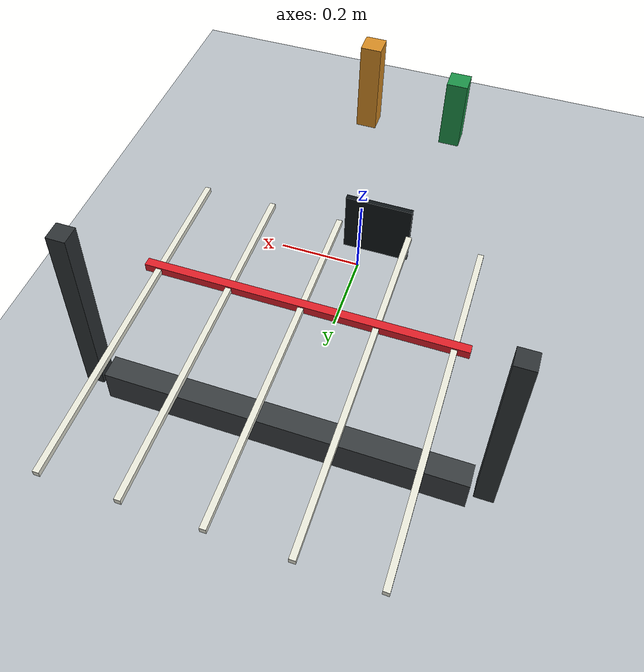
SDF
<?xml version="1.0" ?>
<sdf version="1.10">
  <world name="rm65b_world">
    <plugin filename="gz-sim-physics-system" name="gz::sim::systems::Physics"/>
    <plugin filename="gz-sim-user-commands-system" name="gz::sim::systems::UserCommands"/>
    <plugin filename="gz-sim-scene-broadcaster-system" name="gz::sim::systems::SceneBroadcaster"/>
    <plugin filename="gz-sim-sensors-system" name="gz::sim::systems::Sensors"/>

    <gravity>0 0 -9.8</gravity>
    <magnetic_field>6e-6 2.3e-5 -4.2e-5</magnetic_field>
    <atmosphere type="adiabatic"/>

    <light name="key_light" type="directional">
      <pose>0 0 5 0 0 0</pose>
      <diffuse>0.85 0.85 0.85 1</diffuse>
      <specular>0.2 0.2 0.2 1</specular>
      <direction>-0.45 0.25 -1</direction>
    </light>

    <model name="ground_plane">
      <static>true</static>
      <link name="link">
        <collision name="collision">
          <geometry>
            <plane>
              <normal>0 0 1</normal>
              <size>5 4</size>
            </plane>
          </geometry>
        </collision>
        <visual name="visual">
          <geometry>
            <plane>
              <normal>0 0 1</normal>
              <size>5 4</size>
            </plane>
          </geometry>
          <material>
            <ambient>0.72 0.75 0.77 1</ambient>
            <diffuse>0.72 0.75 0.77 1</diffuse>
          </material>
        </visual>
      </link>
    </model>

    <model name="weaving_fixture">
      <static>true</static>
      <pose>0 0.55 0.08 0 0 0</pose>
      <link name="fixture_link">
        <visual name="loom_frame">
          <pose>0 0 0 0 0 0</pose>
          <geometry>
            <box>
              <size>0.78 0.05 0.08</size>
            </box>
          </geometry>
          <material>
            <ambient>0.22 0.24 0.25 1</ambient>
            <diffuse>0.22 0.24 0.25 1</diffuse>
          </material>
        </visual>
        <visual name="left_post">
          <pose>-0.42 0 0.22 0 0 0</pose>
          <geometry>
            <box>
              <size>0.04 0.04 0.44</size>
            </box>
          </geometry>
          <material>
            <ambient>0.18 0.20 0.21 1</ambient>
            <diffuse>0.18 0.20 0.21 1</diffuse>
          </material>
        </visual>
        <visual name="right_post">
          <pose>0.42 0 0.22 0 0 0</pose>
          <geometry>
            <box>
              <size>0.04 0.04 0.44</size>
            </box>
          </geometry>
          <material>
            <ambient>0.18 0.20 0.21 1</ambient>
            <diffuse>0.18 0.20 0.21 1</diffuse>
          </material>
        </visual>
        <visual name="warp_0">
          <pose>-0.30 0 0.26 0 0 0</pose>
          <geometry>
            <box>
              <size>0.012 0.72 0.012</size>
            </box>
          </geometry>
          <material>
            <ambient>0.92 0.92 0.86 1</ambient>
            <diffuse>0.92 0.92 0.86 1</diffuse>
          </material>
        </visual>
        <visual name="warp_1">
          <pose>-0.15 0 0.26 0 0 0</pose>
          <geometry>
            <box>
              <size>0.012 0.72 0.012</size>
            </box>
          </geometry>
          <material>
            <ambient>0.92 0.92 0.86 1</ambient>
            <diffuse>0.92 0.92 0.86 1</diffuse>
          </material>
        </visual>
        <visual name="warp_2">
          <pose>0 0 0.26 0 0 0</pose>
          <geometry>
            <box>
              <size>0.012 0.72 0.012</size>
            </box>
          </geometry>
          <material>
            <ambient>0.92 0.92 0.86 1</ambient>
            <diffuse>0.92 0.92 0.86 1</diffuse>
          </material>
        </visual>
        <visual name="warp_3">
          <pose>0.15 0 0.26 0 0 0</pose>
          <geometry>
            <box>
              <size>0.012 0.72 0.012</size>
            </box>
          </geometry>
          <material>
            <ambient>0.92 0.92 0.86 1</ambient>
            <diffuse>0.92 0.92 0.86 1</diffuse>
          </material>
        </visual>
        <visual name="warp_4">
          <pose>0.30 0 0.26 0 0 0</pose>
          <geometry>
            <box>
              <size>0.012 0.72 0.012</size>
            </box>
          </geometry>
          <material>
            <ambient>0.92 0.92 0.86 1</ambient>
            <diffuse>0.92 0.92 0.86 1</diffuse>
          </material>
        </visual>
      </link>
    </model>

    <model name="vision_target">
      <static>true</static>
      <pose>-0.08 0.18 0.34 0 0 0</pose>
      <link name="target_link">
        <visual name="target_plate">
          <geometry>
            <box>
              <size>0.14 0.01 0.14</size>
            </box>
          </geometry>
          <material>
            <ambient>0.06 0.08 0.09 1</ambient>
            <diffuse>0.06 0.08 0.09 1</diffuse>
          </material>
        </visual>
        <visual name="target_center">
          <pose>0 -0.008 0 0 0 0</pose>
          <geometry>
            <box>
              <size>0.05 0.006 0.05</size>
            </box>
          </geometry>
          <material>
            <ambient>0.05 0.72 0.38 1</ambient>
            <diffuse>0.05 0.72 0.38 1</diffuse>
          </material>
        </visual>
      </link>
    </model>

    <model name="weft_yarn">
      <static>true</static>
      <pose>0 0.43 0.34 0 0 0</pose>
      <link name="yarn_link">
        <visual name="weft_segment">
          <geometry>
            <box>
              <size>0.66 0.018 0.018</size>
            </box>
          </geometry>
          <material>
            <ambient>0.88 0.12 0.16 1</ambient>
            <diffuse>0.88 0.12 0.16 1</diffuse>
          </material>
        </visual>
      </link>
    </model>

    <model name="force_feedback_bars">
      <static>true</static>
      <pose>0 -0.50 0.05 0 0 0</pose>
      <link name="bars_link">
        <visual name="left_force_bar">
          <pose>-0.12 0 0.10 0 0 0</pose>
          <geometry>
            <box>
              <size>0.055 0.055 0.20</size>
            </box>
          </geometry>
          <material>
            <ambient>0.11 0.57 0.28 1</ambient>
            <diffuse>0.11 0.57 0.28 1</diffuse>
          </material>
        </visual>
        <visual name="right_force_bar">
          <pose>0.12 0 0.13 0 0 0</pose>
          <geometry>
            <box>
              <size>0.055 0.055 0.26</size>
            </box>
          </geometry>
          <material>
            <ambient>0.84 0.55 0.14 1</ambient>
            <diffuse>0.84 0.55 0.14 1</diffuse>
          </material>
        </visual>
      </link>
    </model>

    <model name="evidence_camera">
      <static>true</static>
      <pose>2.90 -2.65 1.85 0 0.62 2.36</pose>
      <link name="camera_link">
        <sensor name="camera" type="camera">
          <topic>/rm65b/evidence_camera/image</topic>
          <always_on>true</always_on>
          <update_rate>10</update_rate>
          <camera>
            <horizontal_fov>1.42</horizontal_fov>
            <image>
              <width>960</width>
              <height>540</height>
              <format>R8G8B8</format>
            </image>
            <clip>
              <near>0.02</near>
              <far>20</far>
            </clip>
          </camera>
        </sensor>
      </link>
    </model>
  </world>
</sdf>
